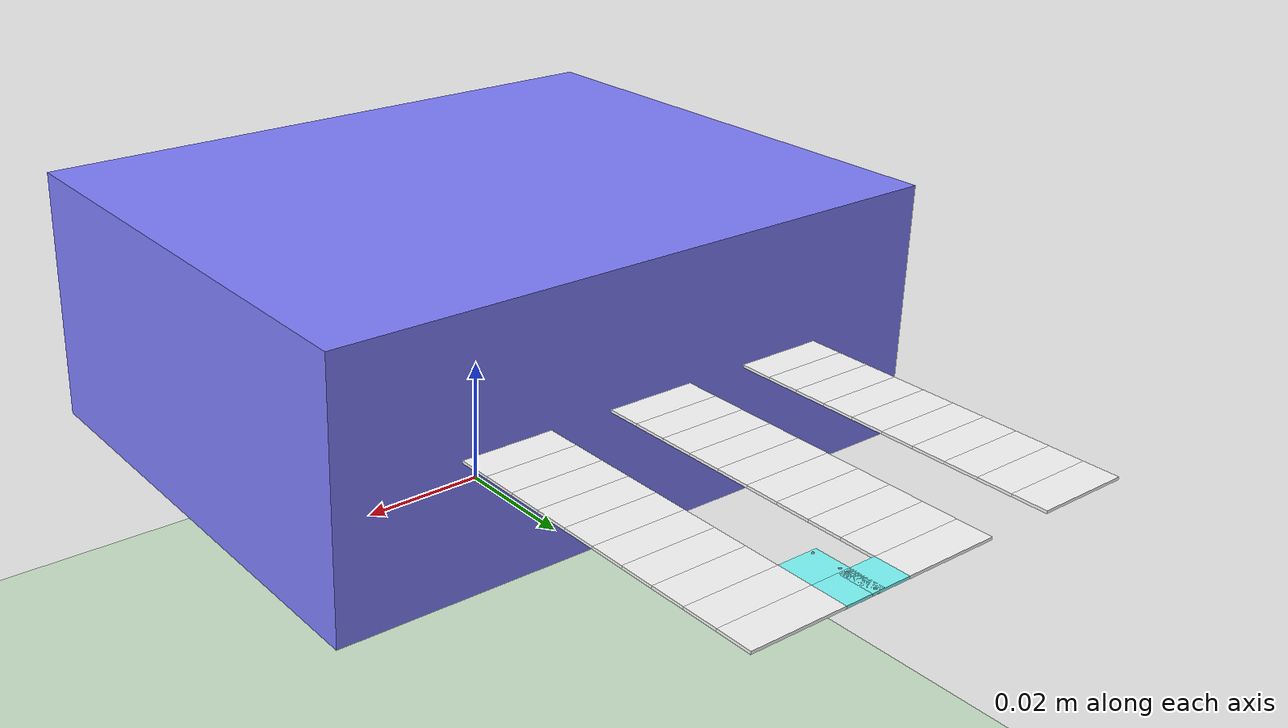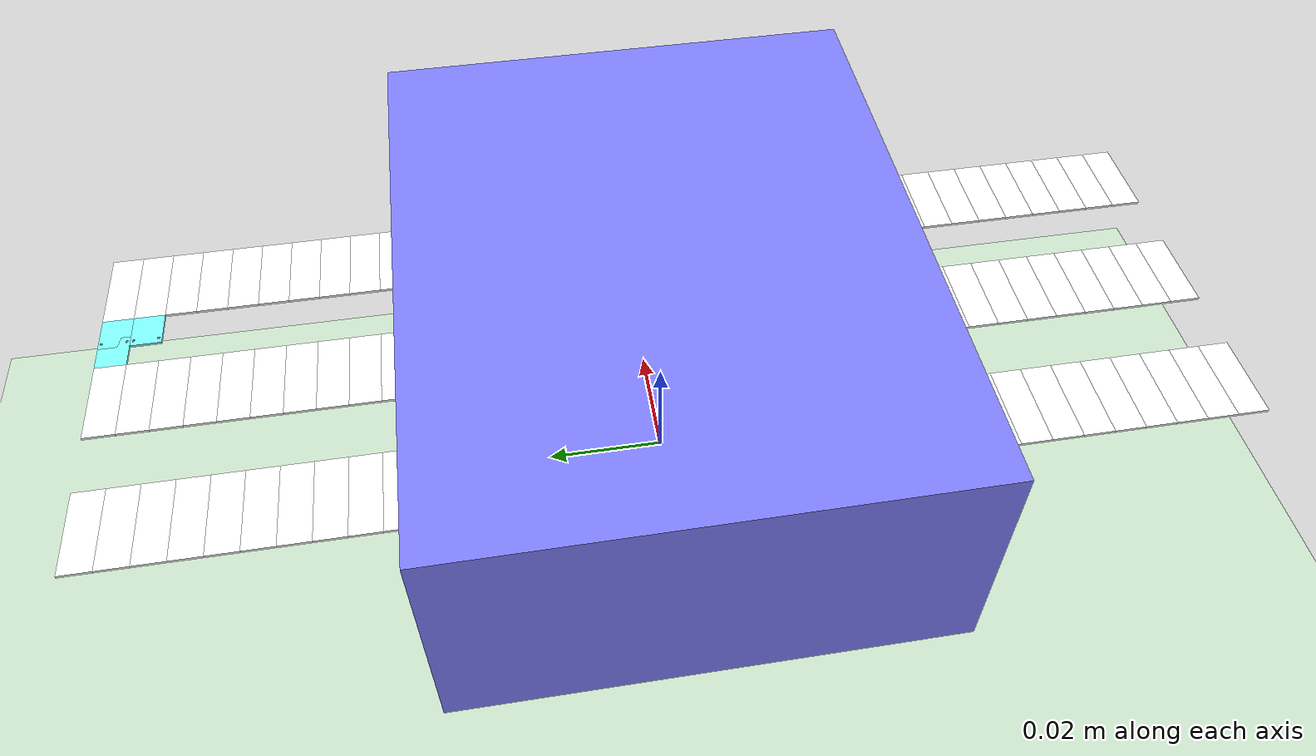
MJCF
<mujoco model="manta">
    <compiler angle="degree" coordinate="local" inertiafromgeom="true"/>
    <option collision="predefined" density="1000" integrator="RK4" timestep="0.01" viscosity="0.1"/>
    <default>
        <geom conaffinity="1" condim="1" contype="1" material="geom" rgba="0.8 0.6 .4 1"/>
        <joint armature='0.1'/>
        <default class="DEA_active">
            <geom type='box' size='.007 .0025 .0002' rgba='1 1 1 1'/>
        </default>
        <default class="DEA_passive">
            <geom type='box' size='.003 .0025 .0002' rgba='.5 1 1 1'/>
        </default>
        <default class="left_joint_active">
            <joint axis="1 0 0" limited="true" pos="0 -0.0025 0" range="-1 1" type="hinge"/>
        </default>
        <default class="right_joint_active">
            <joint axis="1 0 0" limited="true" pos="0 0.0025 0" range="-1 1" type="hinge"/>
        </default>
        <default class="joint_passive_end">
            <joint axis="0 1 0" limited="true" pos=".003 0 0" range="-60 60" type="hinge"/>
        </default>
        <default class="joint_passive_head">
            <joint axis="0 1 0" limited="true" pos="-.003 0 0" range="-60 60" type="hinge"/>
        </default>
        <default class="endsite_a">
            <site pos="-0.002 0.002 0" size="0.0003"/>
        </default>
        <default class="endsite_b">
            <site pos="-0.002 -0.002 0" size="0.0003"/>
        </default>
        <default class="headsite_a">
            <site pos="0.002 0.002 0" size="0.0003"/>
        </default>
        <default class="headsite_b">
            <site pos="0.002 -0.002 0" size="0.0003"/>
        </default>
        <default class="actuator">
            <motor ctrllimited="true" ctrlrange="-1 1" gear="150.0"/>
        </default>
    </default>
    <asset>
        <texture builtin="gradient" height="100" rgb1="1 1 1" rgb2="0 0 0" type="skybox" width="100"/>
        <texture builtin="flat" height="1278" mark="cross" markrgb="1 1 1" name="texgeom" random="0.01"
                 rgb1="0.8 0.6 0.4" rgb2="0.8 0.6 0.4" type="cube" width="127"/>
        <texture builtin="checker" height="100" name="texplane" rgb1="0 0 0" rgb2="0.8 0.8 0.8" type="2d" width="100"/>
        <material name="MatPlane" reflectance="0.5" shininess="1" specular="1" texrepeat="10 10" texture="texplane"/>
        <material name="geom" texture="texgeom" texuniform="true"/>
    </asset>
    <worldbody>
        <light cutoff="100" diffuse="1 1 1" dir="-0 0 -1.3" directional="true" exponent="1" pos="0 0 1.3"
               specular=".1 .1 .1"/>
        <geom conaffinity="1" condim="3" material="MatPlane" name="floor" pos="0 0 -0.1" rgba="0.8 0.9 0.8 1"
              size="1 1 0.1" type="plane"/>
        <!--  ======================================================================== torso ============================================================================= /-->
        <body name="torso" pos="0 0 .03">
            <camera name="track" mode="trackcom" pos="0 -3 3" xyaxes="1 0 0 0 1 1"/>
            <geom type='box' size='.05 .04 .02' rgba='.5 .5 1 1'/>
            <joint axis="1 0 0" name="slider1" pos="0 0 0" type="slide"/>
            <joint axis="0 1 0" name="slider2" pos="0 0 0" type="slide"/>
            <joint axis="0 0 1" name="rot" pos="0 0 0" type="hinge"/>
            <!--  ======================================================================== torso ============================================================================= /-->
            <!--  ======================================================================== left-1 ============================================================================= /-->
            <body name="left_active_1_1" pos=".024 .0425 0">
                <geom class="DEA_active"/>
                <joint name="left_active_1_1" class="left_joint_active"/>

                <body name="left_active_1_2" pos="0 .005 0">
                    <geom class="DEA_active"/>
                    <joint name="left_active_1_2" class="left_joint_active"/>

                    <body name="left_active_1_3" pos="0 .005 0">
                        <geom class="DEA_active"/>
                        <joint name="left_active_1_3" class="left_joint_active"/>

                        <body name="left_active_1_4" pos="0 .005 0">
                            <geom class="DEA_active"/>
                            <joint name="left_active_1_4" class="left_joint_active"/>

                            <body name="left_active_1_5" pos="0 .005 0">
                                <geom class="DEA_active"/>
                                <joint name="left_active_1_5" class="left_joint_active"/>

                                <body name="left_active_1_6" pos="0 .005 0">
                                    <geom class="DEA_active"/>
                                    <joint name="left_active_1_6" class="left_joint_active"/>

                                    <body name="left_active_1_7" pos="0 .005 0">
                                        <geom class="DEA_active"/>
                                        <joint name="left_active_1_7" class="left_joint_active"/>

                                        <body name="left_active_1_8" pos="0 .005 0">
                                            <geom class="DEA_active"/>
                                            <joint name="left_active_1_8" class="left_joint_active"/>

                                            <body name="left_active_1_9" pos="0 .005 0">
                                                <geom class="DEA_active"/>
                                                <joint name="left_active_1_9" class="left_joint_active"/>
                                                <body name="left_passive_1_9_1" pos="-.01 0 0">
                                                    <geom class="DEA_passive"/>
                                                    <joint class="joint_passive_end"/>
                                                    <site name="left_1_9_end_a" class="endsite_a"/>
                                                    <site name="left_1_9_end_b" class="endsite_b"/>

                                                </body>
                                                <body name="left_active_1_10" pos="0 .005 0">
                                                    <geom class="DEA_active"/>
                                                    <joint name="left_active_1_10" class="left_joint_active"/>
                                                    <body name="left_passive_1_10_1" pos="-.01 0 0">
                                                        <geom class="DEA_passive"/>
                                                        <joint class="joint_passive_end"/>
                                                        <site name="left_1_10_end_a" class="endsite_a"/>
                                                        <site name="left_1_10_end_b" class="endsite_b"/>

                                                    </body>
                                                </body>
                                            </body>
                                        </body>
                                    </body>
                                </body>
                            </body>
                        </body>
                    </body>
                </body>
            </body>
            <!--  ======================================================================== left-1 ============================================================================= /-->
            <!--  ======================================================================== left-2 ============================================================================= /-->
            <body name="left_active_2_1" pos="0 .0425 0">
                <geom class="DEA_active"/>
                <joint name="left_active_2_1" class="left_joint_active"/>

                <body name="left_active_2_2" pos="0 .005 0">
                    <geom class="DEA_active"/>
                    <joint name="left_active_2_2" class="left_joint_active"/>

                    <body name="left_active_2_3" pos="0 .005 0">
                        <geom class="DEA_active"/>
                        <joint name="left_active_2_3" class="left_joint_active"/>

                        <body name="left_active_2_4" pos="0 .005 0">
                            <geom class="DEA_active"/>
                            <joint name="left_active_2_4" class="left_joint_active"/>

                            <body name="left_active_2_5" pos="0 .005 0">
                                <geom class="DEA_active"/>
                                <joint name="left_active_2_5" class="left_joint_active"/>

                                <body name="left_active_2_6" pos="0 .005 0">
                                    <geom class="DEA_active"/>
                                    <joint name="left_active_2_6" class="left_joint_active"/>

                                    <body name="left_active_2_7" pos="0 .005 0">
                                        <geom class="DEA_active"/>
                                        <joint name="left_active_2_7" class="left_joint_active"/>

                                        <body name="left_active_2_8" pos="0 .005 0">
                                            <geom class="DEA_active"/>
                                            <joint name="left_active_2_8" class="left_joint_active"/>

                                            <body name="left_active_2_9" pos="0 .005 0">
                                                <geom class="DEA_active"/>
                                                <joint name="left_active_2_9" class="left_joint_active"/>

                                                <body name="left_active_2_10" pos="0 .005 0">
                                                    <geom class="DEA_active"/>
                                                    <joint name="left_active_2_10" class="left_joint_active"/>
                                                    <body pos=".01 0 0">
                                                        <geom class="DEA_passive"/>
                                                        <joint name="test" class="joint_passive_head"/>
                                                        <site name="left_2_10_head_a" class="headsite_a"/>
                                                        <site name="left_2_10_head_b" class="headsite_b"/>
                                                    </body>

                                                </body>
                                            </body>
                                        </body>
                                    </body>
                                </body>
                            </body>
                        </body>
                    </body>
                </body>
            </body>
            <!--  ======================================================================== left-2 ============================================================================= /-->
            <!--  ======================================================================== left-3 ============================================================================= /-->
            <body name="left_active_3_1" pos="-.024 .0425 0">
                <geom class="DEA_active"/>
                <joint name="left_active_3_1" class="left_joint_active"/>

                <body name="left_active_3_2" pos="0 .005 0">
                    <geom class="DEA_active"/>
                    <joint name="left_active_3_2" class="left_joint_active"/>

                    <body name="left_active_3_3" pos="0 .005 0">
                        <geom class="DEA_active"/>
                        <joint name="left_active_3_3" class="left_joint_active"/>

                        <body name="left_active_3_4" pos="0 .005 0">
                            <geom class="DEA_active"/>
                            <joint name="left_active_3_4" class="left_joint_active"/>

                            <body name="left_active_3_5" pos="0 .005 0">
                                <geom class="DEA_active"/>
                                <joint name="left_active_3_5" class="left_joint_active"/>

                                <body name="left_active_3_6" pos="0 .005 0">
                                    <geom class="DEA_active"/>
                                    <joint name="left_active_3_6" class="left_joint_active"/>

                                    <body name="left_active_3_7" pos="0 .005 0">
                                        <geom class="DEA_active"/>
                                        <joint name="left_active_3_7" class="left_joint_active"/>

                                        <body name="left_active_3_8" pos="0 .005 0">
                                            <geom class="DEA_active"/>
                                            <joint name="left_active_3_8" class="left_joint_active"/>

                                            <body name="left_active_3_9" pos="0 .005 0">
                                                <geom class="DEA_active"/>
                                                <joint name="left_active_3_9" class="left_joint_active"/>

                                                <body name="left_active_3_10" pos="0 .005 0">
                                                    <geom class="DEA_active"/>
                                                    <joint name="left_active_3_10" class="left_joint_active"/>

                                                </body>
                                            </body>
                                        </body>
                                    </body>
                                </body>
                            </body>
                        </body>
                    </body>
                </body>
            </body>

            <!--  ======================================================================== left-3 ============================================================================= /-->
            <!--  ======================================================================== right-1 ============================================================================= /-->
            <body name="right_active_1_1" pos=".024 -.0425 0">
                <geom class="DEA_active"/>
                <joint name="right_active_1_1" class="right_joint_active"/>

                <body name="right_active_1_2" pos="0 -.005 0">
                    <geom class="DEA_active"/>
                    <joint name="right_active_1_2" class="right_joint_active"/>

                    <body name="right_active_1_3" pos="0 -.005 0">
                        <geom class="DEA_active"/>
                        <joint name="right_active_1_3" class="right_joint_active"/>

                        <body name="right_active_1_4" pos="0 -.005 0">
                            <geom class="DEA_active"/>
                            <joint name="right_active_1_4" class="right_joint_active"/>

                            <body name="right_active_1_5" pos="0 -.005 0">
                                <geom class="DEA_active"/>
                                <joint name="right_active_1_5" class="right_joint_active"/>

                                <body name="right_active_1_6" pos="0 -.005 0">
                                    <geom class="DEA_active"/>
                                    <joint name="right_active_1_6" class="right_joint_active"/>

                                    <body name="right_active_1_7" pos="0 -.005 0">
                                        <geom class="DEA_active"/>
                                        <joint name="right_active_1_7" class="right_joint_active"/>

                                        <body name="right_active_1_8" pos="0 -.005 0">
                                            <geom class="DEA_active"/>
                                            <joint name="right_active_1_8" class="right_joint_active"/>

                                            <body name="right_active_1_9" pos="0 -.005 0">
                                                <geom class="DEA_active"/>
                                                <joint name="right_active_1_9" class="right_joint_active"/>

                                                <body name="right_active_1_10" pos="0 -.005 0">
                                                    <geom class="DEA_active"/>
                                                    <joint name="right_active_1_10" class="right_joint_active"/>

                                                </body>
                                            </body>
                                        </body>
                                    </body>
                                </body>
                            </body>
                        </body>
                    </body>
                </body>
            </body>
            <!--  ======================================================================== right-1 ============================================================================= /-->
            <!--  ======================================================================== right-2 ============================================================================= /-->
            <body name="right_active_2_1" pos="0 -.0425 0">
                <geom class="DEA_active"/>
                <joint name="right_active_2_1" class="right_joint_active"/>

                <body name="right_active_2_2" pos="0 -.005 0">
                    <geom class="DEA_active"/>
                    <joint name="right_active_2_2" class="right_joint_active"/>

                    <body name="right_active_2_3" pos="0 -.005 0">
                        <geom class="DEA_active"/>
                        <joint name="right_active_2_3" class="right_joint_active"/>

                        <body name="right_active_2_4" pos="0 -.005 0">
                            <geom class="DEA_active"/>
                            <joint name="right_active_2_4" class="right_joint_active"/>

                            <body name="right_active_2_5" pos="0 -.005 0">
                                <geom class="DEA_active"/>
                                <joint name="right_active_2_5" class="right_joint_active"/>

                                <body name="right_active_2_6" pos="0 -.005 0">
                                    <geom class="DEA_active"/>
                                    <joint name="right_active_2_6" class="right_joint_active"/>

                                    <body name="right_active_2_7" pos="0 -.005 0">
                                        <geom class="DEA_active"/>
                                        <joint name="right_active_2_7" class="right_joint_active"/>

                                        <body name="right_active_2_8" pos="0 -.005 0">
                                            <geom class="DEA_active"/>
                                            <joint name="right_active_2_8" class="right_joint_active"/>

                                            <body name="right_active_2_9" pos="0 -.005 0">
                                                <geom class="DEA_active"/>
                                                <joint name="right_active_2_9" class="right_joint_active"/>

                                                <body name="right_active_2_10" pos="0 -.005 0">
                                                    <geom class="DEA_active"/>
                                                    <joint name="right_active_2_10" class="right_joint_active"/>

                                                </body>
                                            </body>
                                        </body>
                                    </body>
                                </body>
                            </body>
                        </body>
                    </body>
                </body>
            </body>
            <!--  ======================================================================== right-2 ============================================================================= /-->
            <!--  ======================================================================== right-3 ============================================================================= /-->
            <body name="right_active_3_1" pos="-.024 -.0425 0">
                <geom class="DEA_active"/>
                <joint name="right_active_3_1" class="right_joint_active"/>

                <body name="right_active_3_2" pos="0 -.005 0">
                    <geom class="DEA_active"/>
                    <joint name="right_active_3_2" class="right_joint_active"/>

                    <body name="right_active_3_3" pos="0 -.005 0">
                        <geom class="DEA_active"/>
                        <joint name="right_active_3_3" class="right_joint_active"/>

                        <body name="right_active_3_4" pos="0 -.005 0">
                            <geom class="DEA_active"/>
                            <joint name="right_active_3_4" class="right_joint_active"/>

                            <body name="right_active_3_5" pos="0 -.005 0">
                                <geom class="DEA_active"/>
                                <joint name="right_active_3_5" class="right_joint_active"/>

                                <body name="right_active_3_6" pos="0 -.005 0">
                                    <geom class="DEA_active"/>
                                    <joint name="right_active_3_6" class="right_joint_active"/>

                                    <body name="right_active_3_7" pos="0 -.005 0">
                                        <geom class="DEA_active"/>
                                        <joint name="right_active_3_7" class="right_joint_active"/>

                                        <body name="right_active_3_8" pos="0 -.005 0">
                                            <geom class="DEA_active"/>
                                            <joint name="right_active_3_8" class="right_joint_active"/>

                                            <body name="right_active_3_9" pos="0 -.005 0">
                                                <geom class="DEA_active"/>
                                                <joint name="right_active_3_9" class="right_joint_active"/>

                                                <body name="right_active_3_10" pos="0 -.005 0">
                                                    <geom class="DEA_active"/>
                                                    <joint name="right_active_3_10" class="right_joint_active"/>

                                                </body>
                                            </body>
                                        </body>
                                    </body>
                                </body>
                            </body>
                        </body>
                    </body>
                </body>
            </body>
            <!--  ======================================================================== right-3 ============================================================================= /-->
        </body>
    </worldbody>
    <!--    add tendon from one site to another site-->
    <tendon>
        <!-- ================================================= left 1 - 2 ====================================================-->
                <spatial width="0.0001" stiffness="100">
                    <site site="left_1_10_end_a"/>
                    <site site="left_2_10_head_a"/>
                </spatial>
                <spatial width="0.0001" stiffness="100">
                    <site site="left_1_10_end_b"/>
                    <site site="left_2_10_head_b"/>
                </spatial>
        <!-- ================================================= left 1 - 2 ====================================================-->
        <!-- ================================================= left 2 - 3 ====================================================-->
        <!-- ================================================= left 2 - 3 ====================================================-->
        <!-- ================================================= right 1 - 2 ====================================================-->

        <!-- ================================================= right 1 - 2 ====================================================-->
        <!-- ================================================= right 2 - 3 ====================================================-->

        <!-- ================================================= right 2 - 3 ====================================================-->
    </tendon>

    <actuator>
        <motor class="actuator" joint="test"/>
        <motor class="actuator" joint="left_active_1_1"/>
        <motor class="actuator" joint="left_active_1_2"/>
        <motor class="actuator" joint="left_active_1_3"/>
        <motor class="actuator" joint="left_active_1_4"/>
        <motor class="actuator" joint="left_active_1_5"/>
        <motor class="actuator" joint="left_active_1_6"/>
        <motor class="actuator" joint="left_active_1_7"/>
        <motor class="actuator" joint="left_active_1_8"/>
        <motor class="actuator" joint="left_active_1_9"/>
        <motor class="actuator" joint="left_active_1_10"/>

        <motor class="actuator" joint="left_active_2_1"/>
        <motor class="actuator" joint="left_active_2_2"/>
        <motor class="actuator" joint="left_active_2_3"/>
        <motor class="actuator" joint="left_active_2_4"/>
        <motor class="actuator" joint="left_active_2_5"/>
        <motor class="actuator" joint="left_active_2_6"/>
        <motor class="actuator" joint="left_active_2_7"/>
        <motor class="actuator" joint="left_active_2_8"/>
        <motor class="actuator" joint="left_active_2_9"/>
        <motor class="actuator" joint="left_active_2_10"/>

        <motor class="actuator" joint="left_active_3_1"/>
        <motor class="actuator" joint="left_active_3_2"/>
        <motor class="actuator" joint="left_active_3_3"/>
        <motor class="actuator" joint="left_active_3_4"/>
        <motor class="actuator" joint="left_active_3_5"/>
        <motor class="actuator" joint="left_active_3_6"/>
        <motor class="actuator" joint="left_active_3_7"/>
        <motor class="actuator" joint="left_active_3_8"/>
        <motor class="actuator" joint="left_active_3_9"/>
        <motor class="actuator" joint="left_active_3_10"/>

        <motor class="actuator" joint="right_active_1_1"/>
        <motor class="actuator" joint="right_active_1_2"/>
        <motor class="actuator" joint="right_active_1_3"/>
        <motor class="actuator" joint="right_active_1_4"/>
        <motor class="actuator" joint="right_active_1_5"/>
        <motor class="actuator" joint="right_active_1_6"/>
        <motor class="actuator" joint="right_active_1_7"/>
        <motor class="actuator" joint="right_active_1_8"/>
        <motor class="actuator" joint="right_active_1_9"/>
        <motor class="actuator" joint="right_active_1_10"/>

        <motor class="actuator" joint="right_active_2_1"/>
        <motor class="actuator" joint="right_active_2_2"/>
        <motor class="actuator" joint="right_active_2_3"/>
        <motor class="actuator" joint="right_active_2_4"/>
        <motor class="actuator" joint="right_active_2_5"/>
        <motor class="actuator" joint="right_active_2_6"/>
        <motor class="actuator" joint="right_active_2_7"/>
        <motor class="actuator" joint="right_active_2_8"/>
        <motor class="actuator" joint="right_active_2_9"/>
        <motor class="actuator" joint="right_active_2_10"/>

        <motor class="actuator" joint="right_active_3_1"/>
        <motor class="actuator" joint="right_active_3_2"/>
        <motor class="actuator" joint="right_active_3_3"/>
        <motor class="actuator" joint="right_active_3_4"/>
        <motor class="actuator" joint="right_active_3_5"/>
        <motor class="actuator" joint="right_active_3_6"/>
        <motor class="actuator" joint="right_active_3_7"/>
        <motor class="actuator" joint="right_active_3_8"/>
        <motor class="actuator" joint="right_active_3_9"/>
        <motor class="actuator" joint="right_active_3_10"/>
    </actuator>
</mujoco>
